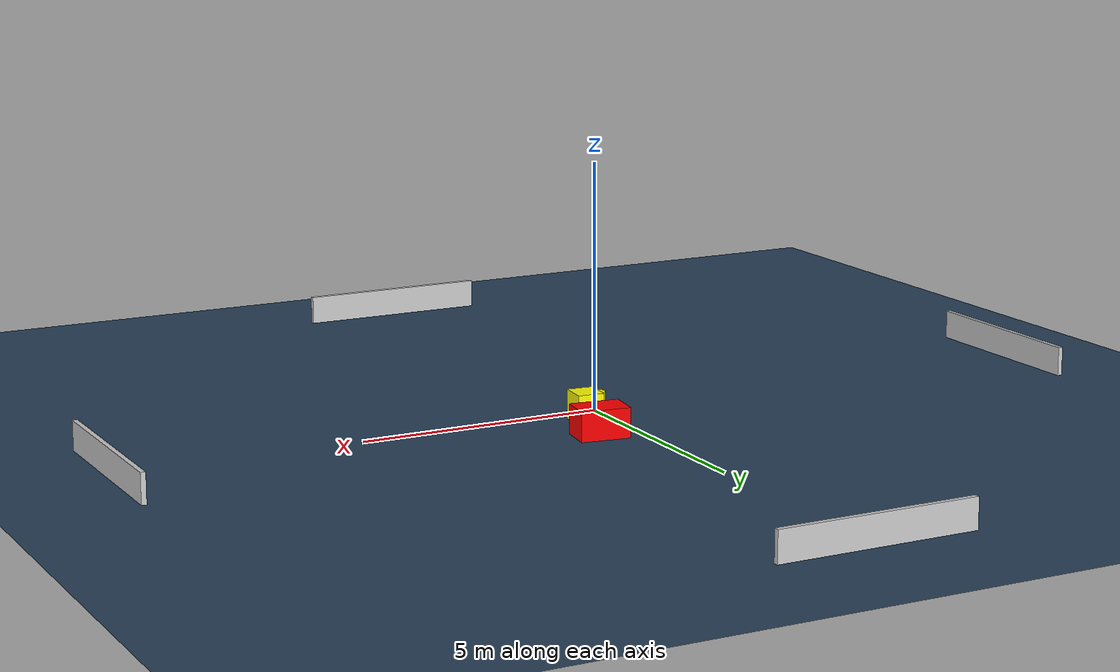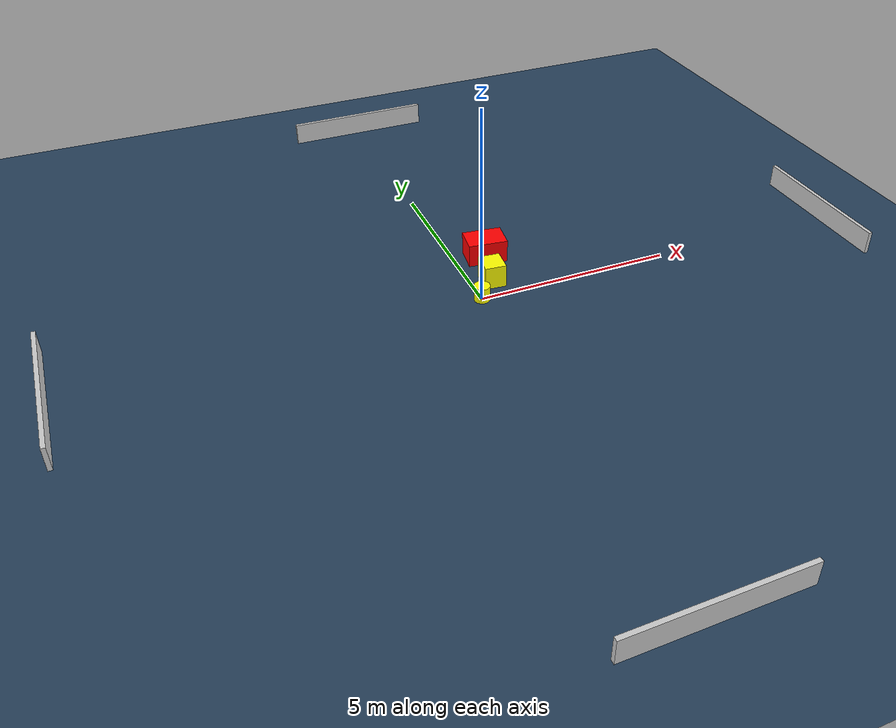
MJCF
<?xml version="1.0" ?>
<mujoco model="generated_environment">
  <option timestep="0.01" integrator="RK4" cone="elliptic"/>
  <default>
    <geom density="1"/>
  </default>
  <asset>
    <texture builtin="gradient" height="3072" name="skybox" rgb1="0.3 0.5 0.7" rgb2="0 0 0" type="skybox" width="512"/>
    <texture builtin="checker" height="300" name="groundplane" rgb1="0.2 0.3 0.4" rgb2="0.1 0.2 0.3" type="2d" width="300"/>
    <material name="groundplane" reflectance="0.2" texrepeat="5 5" texture="groundplane"/>
  </asset>
  <worldbody>
    <light dir="0 0 -1" directional="true" pos="0 0 1.5"/>
    <geom condim="3" friction="0.5 0.005 0.001" material="groundplane" name="floor" pos="0 0 0" size="0 0 0.05" type="plane"/>
    <body name="walls">
      <geom name="wall_1" condim="4" pos="-10.0 0.0 0.3" rgba="0.800000011920929 0.800000011920929 0.800000011920929 1.0" size="0.05 2.0 0.3" type="box"/>
      <geom name="wall_2" condim="4" pos="10.0 0.0 0.3" rgba="0.800000011920929 0.800000011920929 0.800000011920929 1.0" size="0.05 2.0 0.3" type="box"/>
      <geom name="wall_3" condim="4" pos="0.0 -10.0 0.3" rgba="0.800000011920929 0.800000011920929 0.800000011920929 1.0" size="2.0 0.05 0.3" type="box"/>
      <geom name="wall_4" condim="4" pos="0.0 10.0 0.3" rgba="0.800000011920929 0.800000011920929 0.800000011920929 1.0" size="2.0 0.05 0.3" type="box"/>
    </body>
    <body name="robot">
      <joint name="joint_x" type="slide" pos="0 0 0" axis="1 0 0"/>
      <joint name="joint_y" type="slide" pos="0 0 0" axis="0 1 0"/>
      <geom name="robot" type="cylinder" pos="0.0 0.0 0.2" size="0.2 0.2 0.0" mass="5.0" friction="1.0 0.005 0.0001" condim="4" rgba="1.0 1.0 0.0 1.0"/>
    </body>
    <body name="obstacle_1_movable">
      <geom name="obstacle_1_movable" condim="4" pos="0.5295055900673529 0.5981288222793247 0.3" euler="0 0 354.7081005326274" friction="0.0 0.005 0.001" rgba="1.0 1.0 0.0 1.0" size="0.26733644107519505 0.29108677029506097 0.3" type="box" mass="0.1"/>
      <joint type="free"/>
    </body>
    <body name="obstacle_2_static">
      <geom name="obstacle_2_static" condim="4" pos="0.80282769344382 1.7097716062435728 0.3" euler="0 0 82.5209851290023" friction="0.0 0.005 0.001" rgba="1.0 0.0 0.0 1.0" size="0.34839980269403925 0.502022361725558 0.3" type="box"/>
    </body>
  </worldbody>
  <actuator>
    <motor name="actuator_x" joint="joint_x" gear="1" ctrlrange="-1 1"/>
    <motor name="actuator_y" joint="joint_y" gear="1" ctrlrange="-1 1"/>
  </actuator>
</mujoco>
